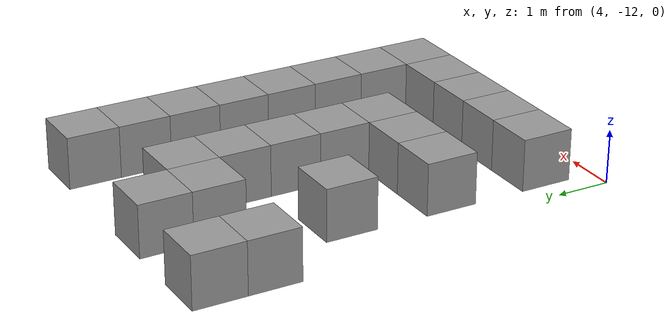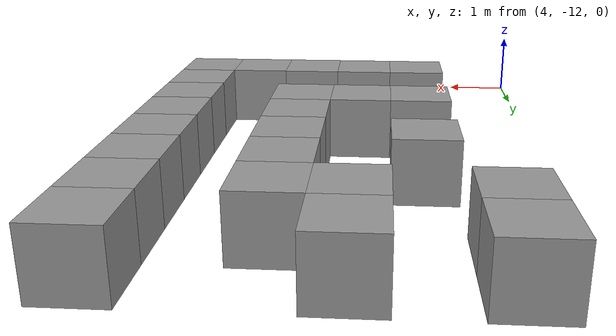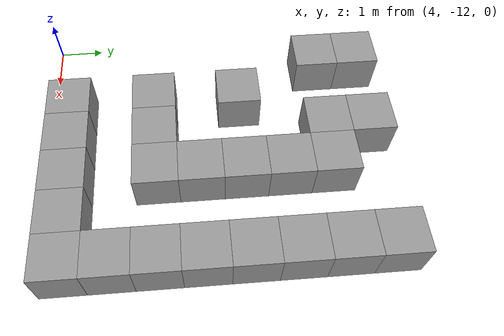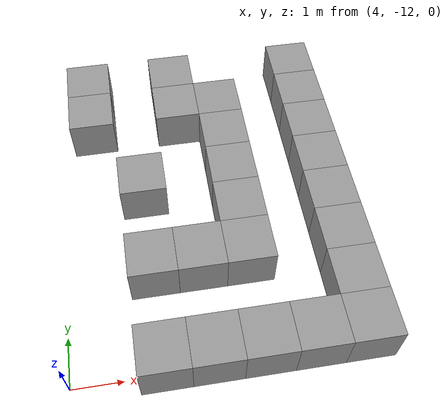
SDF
<sdf version="1.7">
 <model name="maze1">
  <link name="link_1_clone_150">
   <inertial>
    <mass>1</mass>
    <inertia>
     <ixx>0.166667</ixx>
     <ixy>0</ixy>
     <ixz>0</ixz>
     <iyy>0.166667</iyy>
     <iyz>0</iyz>
     <izz>0.166667</izz>
    </inertia>
   </inertial>
   <pose>6.75382 -4.62534 0 0 -0 0</pose>
   <visual name="visual">
    <geometry><box><size>1 1 1</size></box></geometry>
    <material>
     <lighting>1</lighting>
     <script><uri>file://media/materials/scripts/gazebo.material</uri><name>Gazebo/Grey</name></script>
     <shader type="pixel"><normal_map>__default__</normal_map></shader>
     <ambient>0.3 0.3 0.3 1</ambient>
     <diffuse>0.7 0.7 0.7 1</diffuse>
     <specular>0.01 0.01 0.01 1</specular>
     <emissive>0 0 0 1</emissive>
    </material>
   </visual>
   <collision name="collision">
    <geometry><box><size>1 1 1</size></box></geometry>
    <surface>
     <friction>
      <ode><mu>1</mu><mu2>1</mu2><fdir1>0 0 0</fdir1><slip1>0</slip1><slip2>0</slip2></ode>
      <torsional>
       <coefficient>1</coefficient>
       <patch_radius>0</patch_radius>
       <surface_radius>0</surface_radius>
       <use_patch_radius>1</use_patch_radius>
       <ode><slip>0</slip></ode>
      </torsional>
     </friction>
     <bounce><restitution_coefficient>0</restitution_coefficient><threshold>1e+06</threshold></bounce>
     <contact>
      <collide_without_contact>0</collide_without_contact>
      <collide_without_contact_bitmask>1</collide_without_contact_bitmask>
      <collide_bitmask>1</collide_bitmask>
      <ode>
       <soft_cfm>0</soft_cfm>
       <soft_erp>0.2</soft_erp>
       <kp>1e+13</kp>
       <kd>1</kd>
       <max_vel>0.01</max_vel>
       <min_depth>0</min_depth>
      </ode>
      <bullet>
       <split_impulse>1</split_impulse>
       <split_impulse_penetration_threshold>-0.01</split_impulse_penetration_threshold>
       <soft_cfm>0</soft_cfm>
       <soft_erp>0.2</soft_erp>
       <kp>1e+13</kp>
       <kd>1</kd>
      </bullet>
     </contact>
    </surface>
   </collision>
  </link>
  <link name="link_1_clone_151">
   <inertial>
    <mass>1</mass>
    <inertia>
     <ixx>0.166667</ixx>
     <ixy>0</ixy>
     <ixz>0</ixz>
     <iyy>0.166667</iyy>
     <iyz>0</iyz>
     <izz>0.166667</izz>
    </inertia>
   </inertial>
   <pose>6.75382 -5.62535 0 0 -0 0</pose>
   <visual name="visual">
    <geometry><box><size>1 1 1</size></box></geometry>
    <material>
     <lighting>1</lighting>
     <script><uri>file://media/materials/scripts/gazebo.material</uri><name>Gazebo/Grey</name></script>
     <shader type="pixel"><normal_map>__default__</normal_map></shader>
     <ambient>0.3 0.3 0.3 1</ambient>
     <diffuse>0.7 0.7 0.7 1</diffuse>
     <specular>0.01 0.01 0.01 1</specular>
     <emissive>0 0 0 1</emissive>
    </material>
   </visual>
   <collision name="collision">
    <geometry><box><size>1 1 1</size></box></geometry>
    <surface>
     <friction>
      <ode><mu>1</mu><mu2>1</mu2><fdir1>0 0 0</fdir1><slip1>0</slip1><slip2>0</slip2></ode>
      <torsional>
       <coefficient>1</coefficient>
       <patch_radius>0</patch_radius>
       <surface_radius>0</surface_radius>
       <use_patch_radius>1</use_patch_radius>
       <ode><slip>0</slip></ode>
      </torsional>
     </friction>
     <bounce><restitution_coefficient>0</restitution_coefficient><threshold>1e+06</threshold></bounce>
     <contact>
      <collide_without_contact>0</collide_without_contact>
      <collide_without_contact_bitmask>1</collide_without_contact_bitmask>
      <collide_bitmask>1</collide_bitmask>
      <ode>
       <soft_cfm>0</soft_cfm>
       <soft_erp>0.2</soft_erp>
       <kp>1e+13</kp>
       <kd>1</kd>
       <max_vel>0.01</max_vel>
       <min_depth>0</min_depth>
      </ode>
      <bullet>
       <split_impulse>1</split_impulse>
       <split_impulse_penetration_threshold>-0.01</split_impulse_penetration_threshold>
       <soft_cfm>0</soft_cfm>
       <soft_erp>0.2</soft_erp>
       <kp>1e+13</kp>
       <kd>1</kd>
      </bullet>
     </contact>
    </surface>
   </collision>
  </link>
  <link name="link_1_clone_152">
   <inertial>
    <mass>1</mass>
    <inertia>
     <ixx>0.166667</ixx>
     <ixy>0</ixy>
     <ixz>0</ixz>
     <iyy>0.166667</iyy>
     <iyz>0</iyz>
     <izz>0.166667</izz>
    </inertia>
   </inertial>
   <pose>7.75382 -5.62571 0 0 -0 0</pose>
   <visual name="visual">
    <geometry><box><size>1 1 1</size></box></geometry>
    <material>
     <lighting>1</lighting>
     <script><uri>file://media/materials/scripts/gazebo.material</uri><name>Gazebo/Grey</name></script>
     <shader type="pixel"><normal_map>__default__</normal_map></shader>
     <ambient>0.3 0.3 0.3 1</ambient>
     <diffuse>0.7 0.7 0.7 1</diffuse>
     <specular>0.01 0.01 0.01 1</specular>
     <emissive>0 0 0 1</emissive>
    </material>
   </visual>
   <collision name="collision">
    <geometry><box><size>1 1 1</size></box></geometry>
    <surface>
     <friction>
      <ode><mu>1</mu><mu2>1</mu2><fdir1>0 0 0</fdir1><slip1>0</slip1><slip2>0</slip2></ode>
      <torsional>
       <coefficient>1</coefficient>
       <patch_radius>0</patch_radius>
       <surface_radius>0</surface_radius>
       <use_patch_radius>1</use_patch_radius>
       <ode><slip>0</slip></ode>
      </torsional>
     </friction>
     <bounce><restitution_coefficient>0</restitution_coefficient><threshold>1e+06</threshold></bounce>
     <contact>
      <collide_without_contact>0</collide_without_contact>
      <collide_without_contact_bitmask>1</collide_without_contact_bitmask>
      <collide_bitmask>1</collide_bitmask>
      <ode>
       <soft_cfm>0</soft_cfm>
       <soft_erp>0.2</soft_erp>
       <kp>1e+13</kp>
       <kd>1</kd>
       <max_vel>0.01</max_vel>
       <min_depth>0</min_depth>
      </ode>
      <bullet>
       <split_impulse>1</split_impulse>
       <split_impulse_penetration_threshold>-0.01</split_impulse_penetration_threshold>
       <soft_cfm>0</soft_cfm>
       <soft_erp>0.2</soft_erp>
       <kp>1e+13</kp>
       <kd>1</kd>
      </bullet>
     </contact>
    </surface>
   </collision>
  </link>
  <link name="link_1_clone_153">
   <inertial>
    <mass>1</mass>
    <inertia>
     <ixx>0.166667</ixx>
     <ixy>0</ixy>
     <ixz>0</ixz>
     <iyy>0.166667</iyy>
     <iyz>0</iyz>
     <izz>0.166667</izz>
    </inertia>
   </inertial>
   <pose>7.75382 -6.62535 0 0 -0 0</pose>
   <visual name="visual">
    <geometry><box><size>1 1 1</size></box></geometry>
    <material>
     <lighting>1</lighting>
     <script><uri>file://media/materials/scripts/gazebo.material</uri><name>Gazebo/Grey</name></script>
     <shader type="pixel"><normal_map>__default__</normal_map></shader>
     <ambient>0.3 0.3 0.3 1</ambient>
     <diffuse>0.7 0.7 0.7 1</diffuse>
     <specular>0.01 0.01 0.01 1</specular>
     <emissive>0 0 0 1</emissive>
    </material>
   </visual>
   <collision name="collision">
    <geometry><box><size>1 1 1</size></box></geometry>
    <surface>
     <friction>
      <ode><mu>1</mu><mu2>1</mu2><fdir1>0 0 0</fdir1><slip1>0</slip1><slip2>0</slip2></ode>
      <torsional>
       <coefficient>1</coefficient>
       <patch_radius>0</patch_radius>
       <surface_radius>0</surface_radius>
       <use_patch_radius>1</use_patch_radius>
       <ode><slip>0</slip></ode>
      </torsional>
     </friction>
     <bounce><restitution_coefficient>0</restitution_coefficient><threshold>1e+06</threshold></bounce>
     <contact>
      <collide_without_contact>0</collide_without_contact>
      <collide_without_contact_bitmask>1</collide_without_contact_bitmask>
      <collide_bitmask>1</collide_bitmask>
      <ode>
       <soft_cfm>0</soft_cfm>
       <soft_erp>0.2</soft_erp>
       <kp>1e+13</kp>
       <kd>1</kd>
       <max_vel>0.01</max_vel>
       <min_depth>0</min_depth>
      </ode>
      <bullet>
       <split_impulse>1</split_impulse>
       <split_impulse_penetration_threshold>-0.01</split_impulse_penetration_threshold>
       <soft_cfm>0</soft_cfm>
       <soft_erp>0.2</soft_erp>
       <kp>1e+13</kp>
       <kd>1</kd>
      </bullet>
     </contact>
    </surface>
   </collision>
  </link>
  <link name="link_1_clone_154">
   <inertial>
    <mass>1</mass>
    <inertia>
     <ixx>0.166667</ixx>
     <ixy>0</ixy>
     <ixz>0</ixz>
     <iyy>0.166667</iyy>
     <iyz>0</iyz>
     <izz>0.166667</izz>
    </inertia>
   </inertial>
   <pose>7.75382 -7.62535 0 0 -0 0</pose>
   <visual name="visual">
    <geometry><box><size>1 1 1</size></box></geometry>
    <material>
     <lighting>1</lighting>
     <script><uri>file://media/materials/scripts/gazebo.material</uri><name>Gazebo/Grey</name></script>
     <shader type="pixel"><normal_map>__default__</normal_map></shader>
     <ambient>0.3 0.3 0.3 1</ambient>
     <diffuse>0.7 0.7 0.7 1</diffuse>
     <specular>0.01 0.01 0.01 1</specular>
     <emissive>0 0 0 1</emissive>
    </material>
   </visual>
   <collision name="collision">
    <geometry><box><size>1 1 1</size></box></geometry>
    <surface>
     <friction>
      <ode><mu>1</mu><mu2>1</mu2><fdir1>0 0 0</fdir1><slip1>0</slip1><slip2>0</slip2></ode>
      <torsional>
       <coefficient>1</coefficient>
       <patch_radius>0</patch_radius>
       <surface_radius>0</surface_radius>
       <use_patch_radius>1</use_patch_radius>
       <ode><slip>0</slip></ode>
      </torsional>
     </friction>
     <bounce><restitution_coefficient>0</restitution_coefficient><threshold>1e+06</threshold></bounce>
     <contact>
      <collide_without_contact>0</collide_without_contact>
      <collide_without_contact_bitmask>1</collide_without_contact_bitmask>
      <collide_bitmask>1</collide_bitmask>
      <ode>
       <soft_cfm>0</soft_cfm>
       <soft_erp>0.2</soft_erp>
       <kp>1e+13</kp>
       <kd>1</kd>
       <max_vel>0.01</max_vel>
       <min_depth>0</min_depth>
      </ode>
      <bullet>
       <split_impulse>1</split_impulse>
       <split_impulse_penetration_threshold>-0.01</split_impulse_penetration_threshold>
       <soft_cfm>0</soft_cfm>
       <soft_erp>0.2</soft_erp>
       <kp>1e+13</kp>
       <kd>1</kd>
      </bullet>
     </contact>
    </surface>
   </collision>
  </link>
  <link name="link_1_clone_155">
   <inertial>
    <mass>1</mass>
    <inertia>
     <ixx>0.166667</ixx>
     <ixy>0</ixy>
     <ixz>0</ixz>
     <iyy>0.166667</iyy>
     <iyz>0</iyz>
     <izz>0.166667</izz>
    </inertia>
   </inertial>
   <pose>7.75382 -8.62535 0 0 -0 0</pose>
   <visual name="visual">
    <geometry><box><size>1 1 1</size></box></geometry>
    <material>
     <lighting>1</lighting>
     <script><uri>file://media/materials/scripts/gazebo.material</uri><name>Gazebo/Grey</name></script>
     <shader type="pixel"><normal_map>__default__</normal_map></shader>
     <ambient>0.3 0.3 0.3 1</ambient>
     <diffuse>0.7 0.7 0.7 1</diffuse>
     <specular>0.01 0.01 0.01 1</specular>
     <emissive>0 0 0 1</emissive>
    </material>
   </visual>
   <collision name="collision">
    <geometry><box><size>1 1 1</size></box></geometry>
    <surface>
     <friction>
      <ode><mu>1</mu><mu2>1</mu2><fdir1>0 0 0</fdir1><slip1>0</slip1><slip2>0</slip2></ode>
      <torsional>
       <coefficient>1</coefficient>
       <patch_radius>0</patch_radius>
       <surface_radius>0</surface_radius>
       <use_patch_radius>1</use_patch_radius>
       <ode><slip>0</slip></ode>
      </torsional>
     </friction>
     <bounce><restitution_coefficient>0</restitution_coefficient><threshold>1e+06</threshold></bounce>
     <contact>
      <collide_without_contact>0</collide_without_contact>
      <collide_without_contact_bitmask>1</collide_without_contact_bitmask>
      <collide_bitmask>1</collide_bitmask>
      <ode>
       <soft_cfm>0</soft_cfm>
       <soft_erp>0.2</soft_erp>
       <kp>1e+13</kp>
       <kd>1</kd>
       <max_vel>0.01</max_vel>
       <min_depth>0</min_depth>
      </ode>
      <bullet>
       <split_impulse>1</split_impulse>
       <split_impulse_penetration_threshold>-0.01</split_impulse_penetration_threshold>
       <soft_cfm>0</soft_cfm>
       <soft_erp>0.2</soft_erp>
       <kp>1e+13</kp>
       <kd>1</kd>
      </bullet>
     </contact>
    </surface>
   </collision>
  </link>
  <link name="link_1_clone_156">
   <inertial>
    <mass>1</mass>
    <inertia>
     <ixx>0.166667</ixx>
     <ixy>0</ixy>
     <ixz>0</ixz>
     <iyy>0.166667</iyy>
     <iyz>0</iyz>
     <izz>0.166667</izz>
    </inertia>
   </inertial>
   <pose>7.75382 -9.62535 0 0 -0 0</pose>
   <visual name="visual">
    <geometry><box><size>1 1 1</size></box></geometry>
    <material>
     <lighting>1</lighting>
     <script><uri>file://media/materials/scripts/gazebo.material</uri><name>Gazebo/Grey</name></script>
     <shader type="pixel"><normal_map>__default__</normal_map></shader>
     <ambient>0.3 0.3 0.3 1</ambient>
     <diffuse>0.7 0.7 0.7 1</diffuse>
     <specular>0.01 0.01 0.01 1</specular>
     <emissive>0 0 0 1</emissive>
    </material>
   </visual>
   <collision name="collision">
    <geometry><box><size>1 1 1</size></box></geometry>
    <surface>
     <friction>
      <ode><mu>1</mu><mu2>1</mu2><fdir1>0 0 0</fdir1><slip1>0</slip1><slip2>0</slip2></ode>
      <torsional>
       <coefficient>1</coefficient>
       <patch_radius>0</patch_radius>
       <surface_radius>0</surface_radius>
       <use_patch_radius>1</use_patch_radius>
       <ode><slip>0</slip></ode>
      </torsional>
     </friction>
     <bounce><restitution_coefficient>0</restitution_coefficient><threshold>1e+06</threshold></bounce>
     <contact>
      <collide_without_contact>0</collide_without_contact>
      <collide_without_contact_bitmask>1</collide_without_contact_bitmask>
      <collide_bitmask>1</collide_bitmask>
      <ode>
       <soft_cfm>0</soft_cfm>
       <soft_erp>0.2</soft_erp>
       <kp>1e+13</kp>
       <kd>1</kd>
       <max_vel>0.01</max_vel>
       <min_depth>0</min_depth>
      </ode>
      <bullet>
       <split_impulse>1</split_impulse>
       <split_impulse_penetration_threshold>-0.01</split_impulse_penetration_threshold>
       <soft_cfm>0</soft_cfm>
       <soft_erp>0.2</soft_erp>
       <kp>1e+13</kp>
       <kd>1</kd>
      </bullet>
     </contact>
    </surface>
   </collision>
  </link>
  <link name="link_1_clone_157">
   <inertial>
    <mass>1</mass>
    <inertia>
     <ixx>0.166667</ixx>
     <ixy>0</ixy>
     <ixz>0</ixz>
     <iyy>0.166667</iyy>
     <iyz>0</iyz>
     <izz>0.166667</izz>
    </inertia>
   </inertial>
   <pose>6.75382 -9.62535 0 0 -0 0</pose>
   <visual name="visual">
    <geometry><box><size>1 1 1</size></box></geometry>
    <material>
     <lighting>1</lighting>
     <script><uri>file://media/materials/scripts/gazebo.material</uri><name>Gazebo/Grey</name></script>
     <shader type="pixel"><normal_map>__default__</normal_map></shader>
     <ambient>0.3 0.3 0.3 1</ambient>
     <diffuse>0.7 0.7 0.7 1</diffuse>
     <specular>0.01 0.01 0.01 1</specular>
     <emissive>0 0 0 1</emissive>
    </material>
   </visual>
   <collision name="collision">
    <geometry><box><size>1 1 1</size></box></geometry>
    <surface>
     <friction>
      <ode><mu>1</mu><mu2>1</mu2><fdir1>0 0 0</fdir1><slip1>0</slip1><slip2>0</slip2></ode>
      <torsional>
       <coefficient>1</coefficient>
       <patch_radius>0</patch_radius>
       <surface_radius>0</surface_radius>
       <use_patch_radius>1</use_patch_radius>
       <ode><slip>0</slip></ode>
      </torsional>
     </friction>
     <bounce><restitution_coefficient>0</restitution_coefficient><threshold>1e+06</threshold></bounce>
     <contact>
      <collide_without_contact>0</collide_without_contact>
      <collide_without_contact_bitmask>1</collide_without_contact_bitmask>
      <collide_bitmask>1</collide_bitmask>
      <ode>
       <soft_cfm>0</soft_cfm>
       <soft_erp>0.2</soft_erp>
       <kp>1e+13</kp>
       <kd>1</kd>
       <max_vel>0.01</max_vel>
       <min_depth>0</min_depth>
      </ode>
      <bullet>
       <split_impulse>1</split_impulse>
       <split_impulse_penetration_threshold>-0.01</split_impulse_penetration_threshold>
       <soft_cfm>0</soft_cfm>
       <soft_erp>0.2</soft_erp>
       <kp>1e+13</kp>
       <kd>1</kd>
      </bullet>
     </contact>
    </surface>
   </collision>
  </link>
  <link name="link_1_clone_158">
   <inertial>
    <mass>1</mass>
    <inertia>
     <ixx>0.166667</ixx>
     <ixy>0</ixy>
     <ixz>0</ixz>
     <iyy>0.166667</iyy>
     <iyz>0</iyz>
     <izz>0.166667</izz>
    </inertia>
   </inertial>
   <pose>5.75382 -9.62535 0 0 -0 0</pose>
   <visual name="visual">
    <geometry><box><size>1 1 1</size></box></geometry>
    <material>
     <lighting>1</lighting>
     <script><uri>file://media/materials/scripts/gazebo.material</uri><name>Gazebo/Grey</name></script>
     <shader type="pixel"><normal_map>__default__</normal_map></shader>
     <ambient>0.3 0.3 0.3 1</ambient>
     <diffuse>0.7 0.7 0.7 1</diffuse>
     <specular>0.01 0.01 0.01 1</specular>
     <emissive>0 0 0 1</emissive>
    </material>
   </visual>
   <collision name="collision">
    <geometry><box><size>1 1 1</size></box></geometry>
    <surface>
     <friction>
      <ode><mu>1</mu><mu2>1</mu2><fdir1>0 0 0</fdir1><slip1>0</slip1><slip2>0</slip2></ode>
      <torsional>
       <coefficient>1</coefficient>
       <patch_radius>0</patch_radius>
       <surface_radius>0</surface_radius>
       <use_patch_radius>1</use_patch_radius>
       <ode><slip>0</slip></ode>
      </torsional>
     </friction>
     <bounce><restitution_coefficient>0</restitution_coefficient><threshold>1e+06</threshold></bounce>
     <contact>
      <collide_without_contact>0</collide_without_contact>
      <collide_without_contact_bitmask>1</collide_without_contact_bitmask>
      <collide_bitmask>1</collide_bitmask>
      <ode>
       <soft_cfm>0</soft_cfm>
       <soft_erp>0.2</soft_erp>
       <kp>1e+13</kp>
       <kd>1</kd>
       <max_vel>0.01</max_vel>
       <min_depth>0</min_depth>
      </ode>
      <bullet>
       <split_impulse>1</split_impulse>
       <split_impulse_penetration_threshold>-0.01</split_impulse_penetration_threshold>
       <soft_cfm>0</soft_cfm>
       <soft_erp>0.2</soft_erp>
       <kp>1e+13</kp>
       <kd>1</kd>
      </bullet>
     </contact>
    </surface>
   </collision>
  </link>
  <link name="link_1_clone_160">
   <inertial>
    <mass>1</mass>
    <inertia>
     <ixx>0.166667</ixx>
     <ixy>0</ixy>
     <ixz>0</ixz>
     <iyy>0.166667</iyy>
     <iyz>0</iyz>
     <izz>0.166667</izz>
    </inertia>
   </inertial>
   <pose>5.75382 -7.62535 0 0 -0 0</pose>
   <visual name="visual">
    <geometry><box><size>1 1 1</size></box></geometry>
    <material>
     <lighting>1</lighting>
     <script><uri>file://media/materials/scripts/gazebo.material</uri><name>Gazebo/Grey</name></script>
     <shader type="pixel"><normal_map>__default__</normal_map></shader>
     <ambient>0.3 0.3 0.3 1</ambient>
     <diffuse>0.7 0.7 0.7 1</diffuse>
     <specular>0.01 0.01 0.01 1</specular>
     <emissive>0 0 0 1</emissive>
    </material>
   </visual>
   <collision name="collision">
    <geometry><box><size>1 1 1</size></box></geometry>
    <surface>
     <friction>
      <ode><mu>1</mu><mu2>1</mu2><fdir1>0 0 0</fdir1><slip1>0</slip1><slip2>0</slip2></ode>
      <torsional>
       <coefficient>1</coefficient>
       <patch_radius>0</patch_radius>
       <surface_radius>0</surface_radius>
       <use_patch_radius>1</use_patch_radius>
       <ode><slip>0</slip></ode>
      </torsional>
     </friction>
     <bounce><restitution_coefficient>0</restitution_coefficient><threshold>1e+06</threshold></bounce>
     <contact>
      <collide_without_contact>0</collide_without_contact>
      <collide_without_contact_bitmask>1</collide_without_contact_bitmask>
      <collide_bitmask>1</collide_bitmask>
      <ode>
       <soft_cfm>0</soft_cfm>
       <soft_erp>0.2</soft_erp>
       <kp>1e+13</kp>
       <kd>1</kd>
       <max_vel>0.01</max_vel>
       <min_depth>0</min_depth>
      </ode>
      <bullet>
       <split_impulse>1</split_impulse>
       <split_impulse_penetration_threshold>-0.01</split_impulse_penetration_threshold>
       <soft_cfm>0</soft_cfm>
       <soft_erp>0.2</soft_erp>
       <kp>1e+13</kp>
       <kd>1</kd>
      </bullet>
     </contact>
    </surface>
   </collision>
  </link>
  <link name="link_1_clone_163">
   <inertial>
    <mass>1</mass>
    <inertia>
     <ixx>0.166667</ixx>
     <ixy>0</ixy>
     <ixz>0</ixz>
     <iyy>0.166667</iyy>
     <iyz>0</iyz>
     <izz>0.166667</izz>
    </inertia>
   </inertial>
   <pose>4.75382 -5.62535 0 0 -0 0</pose>
   <visual name="visual">
    <geometry><box><size>1 1 1</size></box></geometry>
    <material>
     <lighting>1</lighting>
     <script><uri>file://media/materials/scripts/gazebo.material</uri><name>Gazebo/Grey</name></script>
     <shader type="pixel"><normal_map>__default__</normal_map></shader>
     <ambient>0.3 0.3 0.3 1</ambient>
     <diffuse>0.7 0.7 0.7 1</diffuse>
     <specular>0.01 0.01 0.01 1</specular>
     <emissive>0 0 0 1</emissive>
    </material>
   </visual>
   <collision name="collision">
    <geometry><box><size>1 1 1</size></box></geometry>
    <surface>
     <friction>
      <ode><mu>1</mu><mu2>1</mu2><fdir1>0 0 0</fdir1><slip1>0</slip1><slip2>0</slip2></ode>
      <torsional>
       <coefficient>1</coefficient>
       <patch_radius>0</patch_radius>
       <surface_radius>0</surface_radius>
       <use_patch_radius>1</use_patch_radius>
       <ode><slip>0</slip></ode>
      </torsional>
     </friction>
     <bounce><restitution_coefficient>0</restitution_coefficient><threshold>1e+06</threshold></bounce>
     <contact>
      <collide_without_contact>0</collide_without_contact>
      <collide_without_contact_bitmask>1</collide_without_contact_bitmask>
      <collide_bitmask>1</collide_bitmask>
      <ode>
       <soft_cfm>0</soft_cfm>
       <soft_erp>0.2</soft_erp>
       <kp>1e+13</kp>
       <kd>1</kd>
       <max_vel>0.01</max_vel>
       <min_depth>0</min_depth>
      </ode>
      <bullet>
       <split_impulse>1</split_impulse>
       <split_impulse_penetration_threshold>-0.01</split_impulse_penetration_threshold>
       <soft_cfm>0</soft_cfm>
       <soft_erp>0.2</soft_erp>
       <kp>1e+13</kp>
       <kd>1</kd>
      </bullet>
     </contact>
    </surface>
   </collision>
  </link>
  <link name="link_1_clone_164">
   <inertial>
    <mass>1</mass>
    <inertia>
     <ixx>0.166667</ixx>
     <ixy>0</ixy>
     <ixz>0</ixz>
     <iyy>0.166667</iyy>
     <iyz>0</iyz>
     <izz>0.166667</izz>
    </inertia>
   </inertial>
   <pose>4.75382 -4.62534 0 0 -0 0</pose>
   <visual name="visual">
    <geometry><box><size>1 1 1</size></box></geometry>
    <material>
     <lighting>1</lighting>
     <script><uri>file://media/materials/scripts/gazebo.material</uri><name>Gazebo/Grey</name></script>
     <shader type="pixel"><normal_map>__default__</normal_map></shader>
     <ambient>0.3 0.3 0.3 1</ambient>
     <diffuse>0.7 0.7 0.7 1</diffuse>
     <specular>0.01 0.01 0.01 1</specular>
     <emissive>0 0 0 1</emissive>
    </material>
   </visual>
   <collision name="collision">
    <geometry><box><size>1 1 1</size></box></geometry>
    <surface>
     <friction>
      <ode><mu>1</mu><mu2>1</mu2><fdir1>0 0 0</fdir1><slip1>0</slip1><slip2>0</slip2></ode>
      <torsional>
       <coefficient>1</coefficient>
       <patch_radius>0</patch_radius>
       <surface_radius>0</surface_radius>
       <use_patch_radius>1</use_patch_radius>
       <ode><slip>0</slip></ode>
      </torsional>
     </friction>
     <bounce><restitution_coefficient>0</restitution_coefficient><threshold>1e+06</threshold></bounce>
     <contact>
      <collide_without_contact>0</collide_without_contact>
      <collide_without_contact_bitmask>1</collide_without_contact_bitmask>
      <collide_bitmask>1</collide_bitmask>
      <ode>
       <soft_cfm>0</soft_cfm>
       <soft_erp>0.2</soft_erp>
       <kp>1e+13</kp>
       <kd>1</kd>
       <max_vel>0.01</max_vel>
       <min_depth>0</min_depth>
      </ode>
      <bullet>
       <split_impulse>1</split_impulse>
       <split_impulse_penetration_threshold>-0.01</split_impulse_penetration_threshold>
       <soft_cfm>0</soft_cfm>
       <soft_erp>0.2</soft_erp>
       <kp>1e+13</kp>
       <kd>1</kd>
      </bullet>
     </contact>
    </surface>
   </collision>
  </link>
  <link name="link_1_clone_50">
   <inertial>
    <mass>1</mass>
    <inertia>
     <ixx>0.166667</ixx>
     <ixy>0</ixy>
     <ixz>0</ixz>
     <iyy>0.166667</iyy>
     <iyz>0</iyz>
     <izz>0.166667</izz>
    </inertia>
   </inertial>
   <pose>5.75382 -11.6253 0 0 -0 0</pose>
   <visual name="visual">
    <geometry><box><size>1 1 1</size></box></geometry>
    <material>
     <lighting>1</lighting>
     <script><uri>file://media/materials/scripts/gazebo.material</uri><name>Gazebo/Grey</name></script>
     <shader type="pixel"><normal_map>__default__</normal_map></shader>
     <ambient>0.3 0.3 0.3 1</ambient>
     <diffuse>0.7 0.7 0.7 1</diffuse>
     <specular>0.01 0.01 0.01 1</specular>
     <emissive>0 0 0 1</emissive>
    </material>
   </visual>
   <collision name="collision">
    <geometry><box><size>1 1 1</size></box></geometry>
    <surface>
     <friction>
      <ode><mu>1</mu><mu2>1</mu2><fdir1>0 0 0</fdir1><slip1>0</slip1><slip2>0</slip2></ode>
      <torsional>
       <coefficient>1</coefficient>
       <patch_radius>0</patch_radius>
       <surface_radius>0</surface_radius>
       <use_patch_radius>1</use_patch_radius>
       <ode><slip>0</slip></ode>
      </torsional>
     </friction>
     <bounce><restitution_coefficient>0</restitution_coefficient><threshold>1e+06</threshold></bounce>
     <contact>
      <collide_without_contact>0</collide_without_contact>
      <collide_without_contact_bitmask>1</collide_without_contact_bitmask>
      <collide_bitmask>1</collide_bitmask>
      <ode>
       <soft_cfm>0</soft_cfm>
       <soft_erp>0.2</soft_erp>
       <kp>1e+13</kp>
       <kd>1</kd>
       <max_vel>0.01</max_vel>
       <min_depth>0</min_depth>
      </ode>
      <bullet>
       <split_impulse>1</split_impulse>
       <split_impulse_penetration_threshold>-0.01</split_impulse_penetration_threshold>
       <soft_cfm>0</soft_cfm>
       <soft_erp>0.2</soft_erp>
       <kp>1e+13</kp>
       <kd>1</kd>
      </bullet>
     </contact>
    </surface>
   </collision>
  </link>
  <link name="link_1_clone_51">
   <inertial>
    <mass>1</mass>
    <inertia>
     <ixx>0.166667</ixx>
     <ixy>0</ixy>
     <ixz>0</ixz>
     <iyy>0.166667</iyy>
     <iyz>0</iyz>
     <izz>0.166667</izz>
    </inertia>
   </inertial>
   <pose>6.75382 -11.6253 0 0 -0 0</pose>
   <visual name="visual">
    <geometry><box><size>1 1 1</size></box></geometry>
    <material>
     <lighting>1</lighting>
     <script><uri>file://media/materials/scripts/gazebo.material</uri><name>Gazebo/Grey</name></script>
     <shader type="pixel"><normal_map>__default__</normal_map></shader>
     <ambient>0.3 0.3 0.3 1</ambient>
     <diffuse>0.7 0.7 0.7 1</diffuse>
     <specular>0.01 0.01 0.01 1</specular>
     <emissive>0 0 0 1</emissive>
    </material>
   </visual>
   <collision name="collision">
    <geometry><box><size>1 1 1</size></box></geometry>
    <surface>
     <friction>
      <ode><mu>1</mu><mu2>1</mu2><fdir1>0 0 0</fdir1><slip1>0</slip1><slip2>0</slip2></ode>
      <torsional>
       <coefficient>1</coefficient>
       <patch_radius>0</patch_radius>
       <surface_radius>0</surface_radius>
       <use_patch_radius>1</use_patch_radius>
       <ode><slip>0</slip></ode>
      </torsional>
     </friction>
     <bounce><restitution_coefficient>0</restitution_coefficient><threshold>1e+06</threshold></bounce>
     <contact>
      <collide_without_contact>0</collide_without_contact>
      <collide_without_contact_bitmask>1</collide_without_contact_bitmask>
      <collide_bitmask>1</collide_bitmask>
      <ode>
       <soft_cfm>0</soft_cfm>
       <soft_erp>0.2</soft_erp>
       <kp>1e+13</kp>
       <kd>1</kd>
       <max_vel>0.01</max_vel>
       <min_depth>0</min_depth>
      </ode>
      <bullet>
       <split_impulse>1</split_impulse>
       <split_impulse_penetration_threshold>-0.01</split_impulse_penetration_threshold>
       <soft_cfm>0</soft_cfm>
       <soft_erp>0.2</soft_erp>
       <kp>1e+13</kp>
       <kd>1</kd>
      </bullet>
     </contact>
    </surface>
   </collision>
  </link>
  <link name="link_1_clone_52">
   <inertial>
    <mass>1</mass>
    <inertia>
     <ixx>0.166667</ixx>
     <ixy>0</ixy>
     <ixz>0</ixz>
     <iyy>0.166667</iyy>
     <iyz>0</iyz>
     <izz>0.166667</izz>
    </inertia>
   </inertial>
   <pose>7.75382 -11.6253 0 0 -0 0</pose>
   <visual name="visual">
    <geometry><box><size>1 1 1</size></box></geometry>
    <material>
     <lighting>1</lighting>
     <script><uri>file://media/materials/scripts/gazebo.material</uri><name>Gazebo/Grey</name></script>
     <shader type="pixel"><normal_map>__default__</normal_map></shader>
     <ambient>0.3 0.3 0.3 1</ambient>
     <diffuse>0.7 0.7 0.7 1</diffuse>
     <specular>0.01 0.01 0.01 1</specular>
     <emissive>0 0 0 1</emissive>
    </material>
   </visual>
   <collision name="collision">
    <geometry><box><size>1 1 1</size></box></geometry>
    <surface>
     <friction>
      <ode><mu>1</mu><mu2>1</mu2><fdir1>0 0 0</fdir1><slip1>0</slip1><slip2>0</slip2></ode>
      <torsional>
       <coefficient>1</coefficient>
       <patch_radius>0</patch_radius>
       <surface_radius>0</surface_radius>
       <use_patch_radius>1</use_patch_radius>
       <ode><slip>0</slip></ode>
      </torsional>
     </friction>
     <bounce><restitution_coefficient>0</restitution_coefficient><threshold>1e+06</threshold></bounce>
     <contact>
      <collide_without_contact>0</collide_without_contact>
      <collide_without_contact_bitmask>1</collide_without_contact_bitmask>
      <collide_bitmask>1</collide_bitmask>
      <ode>
       <soft_cfm>0</soft_cfm>
       <soft_erp>0.2</soft_erp>
       <kp>1e+13</kp>
       <kd>1</kd>
       <max_vel>0.01</max_vel>
       <min_depth>0</min_depth>
      </ode>
      <bullet>
       <split_impulse>1</split_impulse>
       <split_impulse_penetration_threshold>-0.01</split_impulse_penetration_threshold>
       <soft_cfm>0</soft_cfm>
       <soft_erp>0.2</soft_erp>
       <kp>1e+13</kp>
       <kd>1</kd>
      </bullet>
     </contact>
    </surface>
   </collision>
  </link>
  <link name="link_1_clone_53">
   <inertial>
    <mass>1</mass>
    <inertia>
     <ixx>0.166667</ixx>
     <ixy>0</ixy>
     <ixz>0</ixz>
     <iyy>0.166667</iyy>
     <iyz>0</iyz>
     <izz>0.166667</izz>
    </inertia>
   </inertial>
   <pose>8.75382 -11.6253 0 0 -0 0</pose>
   <visual name="visual">
    <geometry><box><size>1 1 1</size></box></geometry>
    <material>
     <lighting>1</lighting>
     <script><uri>file://media/materials/scripts/gazebo.material</uri><name>Gazebo/Grey</name></script>
     <shader type="pixel"><normal_map>__default__</normal_map></shader>
     <ambient>0.3 0.3 0.3 1</ambient>
     <diffuse>0.7 0.7 0.7 1</diffuse>
     <specular>0.01 0.01 0.01 1</specular>
     <emissive>0 0 0 1</emissive>
    </material>
   </visual>
   <collision name="collision">
    <geometry><box><size>1 1 1</size></box></geometry>
    <surface>
     <friction>
      <ode><mu>1</mu><mu2>1</mu2><fdir1>0 0 0</fdir1><slip1>0</slip1><slip2>0</slip2></ode>
      <torsional>
       <coefficient>1</coefficient>
       <patch_radius>0</patch_radius>
       <surface_radius>0</surface_radius>
       <use_patch_radius>1</use_patch_radius>
       <ode><slip>0</slip></ode>
      </torsional>
     </friction>
     <bounce><restitution_coefficient>0</restitution_coefficient><threshold>1e+06</threshold></bounce>
     <contact>
      <collide_without_contact>0</collide_without_contact>
      <collide_without_contact_bitmask>1</collide_without_contact_bitmask>
      <collide_bitmask>1</collide_bitmask>
      <ode>
       <soft_cfm>0</soft_cfm>
       <soft_erp>0.2</soft_erp>
       <kp>1e+13</kp>
       <kd>1</kd>
       <max_vel>0.01</max_vel>
       <min_depth>0</min_depth>
      </ode>
      <bullet>
       <split_impulse>1</split_impulse>
       <split_impulse_penetration_threshold>-0.01</split_impulse_penetration_threshold>
       <soft_cfm>0</soft_cfm>
       <soft_erp>0.2</soft_erp>
       <kp>1e+13</kp>
       <kd>1</kd>
      </bullet>
     </contact>
    </surface>
   </collision>
  </link>
  <link name="link_1_clone_54">
   <inertial>
    <mass>1</mass>
    <inertia>
     <ixx>0.166667</ixx>
     <ixy>0</ixy>
     <ixz>0</ixz>
     <iyy>0.166667</iyy>
     <iyz>0</iyz>
     <izz>0.166667</izz>
    </inertia>
   </inertial>
   <pose>9.75382 -11.6253 0 0 -0 0</pose>
   <visual name="visual">
    <geometry><box><size>1 1 1</size></box></geometry>
    <material>
     <lighting>1</lighting>
     <script><uri>file://media/materials/scripts/gazebo.material</uri><name>Gazebo/Grey</name></script>
     <shader type="pixel"><normal_map>__default__</normal_map></shader>
     <ambient>0.3 0.3 0.3 1</ambient>
     <diffuse>0.7 0.7 0.7 1</diffuse>
     <specular>0.01 0.01 0.01 1</specular>
     <emissive>0 0 0 1</emissive>
    </material>
   </visual>
   <collision name="collision">
    <geometry><box><size>1 1 1</size></box></geometry>
    <surface>
     <friction>
      <ode><mu>1</mu><mu2>1</mu2><fdir1>0 0 0</fdir1><slip1>0</slip1><slip2>0</slip2></ode>
      <torsional>
       <coefficient>1</coefficient>
       <patch_radius>0</patch_radius>
       <surface_radius>0</surface_radius>
       <use_patch_radius>1</use_patch_radius>
       <ode><slip>0</slip></ode>
      </torsional>
     </friction>
     <bounce><restitution_coefficient>0</restitution_coefficient><threshold>1e+06</threshold></bounce>
     <contact>
      <collide_without_contact>0</collide_without_contact>
      <collide_without_contact_bitmask>1</collide_without_contact_bitmask>
      <collide_bitmask>1</collide_bitmask>
      <ode>
       <soft_cfm>0</soft_cfm>
       <soft_erp>0.2</soft_erp>
       <kp>1e+13</kp>
       <kd>1</kd>
       <max_vel>0.01</max_vel>
       <min_depth>0</min_depth>
      </ode>
      <bullet>
       <split_impulse>1</split_impulse>
       <split_impulse_penetration_threshold>-0.01</split_impulse_penetration_threshold>
       <soft_cfm>0</soft_cfm>
       <soft_erp>0.2</soft_erp>
       <kp>1e+13</kp>
       <kd>1</kd>
      </bullet>
     </contact>
    </surface>
   </collision>
  </link>
  <link name="link_1_clone_55">
   <inertial>
    <mass>1</mass>
    <inertia>
     <ixx>0.166667</ixx>
     <ixy>0</ixy>
     <ixz>0</ixz>
     <iyy>0.166667</iyy>
     <iyz>0</iyz>
     <izz>0.166667</izz>
    </inertia>
   </inertial>
   <pose>9.75382 -10.6253 0 0 -0 0</pose>
   <visual name="visual">
    <geometry><box><size>1 1 1</size></box></geometry>
    <material>
     <lighting>1</lighting>
     <script><uri>file://media/materials/scripts/gazebo.material</uri><name>Gazebo/Grey</name></script>
     <shader type="pixel"><normal_map>__default__</normal_map></shader>
     <ambient>0.3 0.3 0.3 1</ambient>
     <diffuse>0.7 0.7 0.7 1</diffuse>
     <specular>0.01 0.01 0.01 1</specular>
     <emissive>0 0 0 1</emissive>
    </material>
   </visual>
   <collision name="collision">
    <geometry><box><size>1 1 1</size></box></geometry>
    <surface>
     <friction>
      <ode><mu>1</mu><mu2>1</mu2><fdir1>0 0 0</fdir1><slip1>0</slip1><slip2>0</slip2></ode>
      <torsional>
       <coefficient>1</coefficient>
       <patch_radius>0</patch_radius>
       <surface_radius>0</surface_radius>
       <use_patch_radius>1</use_patch_radius>
       <ode><slip>0</slip></ode>
      </torsional>
     </friction>
     <bounce><restitution_coefficient>0</restitution_coefficient><threshold>1e+06</threshold></bounce>
     <contact>
      <collide_without_contact>0</collide_without_contact>
      <collide_without_contact_bitmask>1</collide_without_contact_bitmask>
      <collide_bitmask>1</collide_bitmask>
      <ode>
       <soft_cfm>0</soft_cfm>
       <soft_erp>0.2</soft_erp>
       <kp>1e+13</kp>
       <kd>1</kd>
       <max_vel>0.01</max_vel>
       <min_depth>0</min_depth>
      </ode>
      <bullet>
       <split_impulse>1</split_impulse>
       <split_impulse_penetration_threshold>-0.01</split_impulse_penetration_threshold>
       <soft_cfm>0</soft_cfm>
       <soft_erp>0.2</soft_erp>
       <kp>1e+13</kp>
       <kd>1</kd>
      </bullet>
     </contact>
    </surface>
   </collision>
  </link>
  <link name="link_1_clone_56">
   <inertial>
    <mass>1</mass>
    <inertia>
     <ixx>0.166667</ixx>
     <ixy>0</ixy>
     <ixz>0</ixz>
     <iyy>0.166667</iyy>
     <iyz>0</iyz>
     <izz>0.166667</izz>
    </inertia>
   </inertial>
   <pose>9.75382 -9.62535 0 0 -0 0</pose>
   <visual name="visual">
    <geometry><box><size>1 1 1</size></box></geometry>
    <material>
     <lighting>1</lighting>
     <script><uri>file://media/materials/scripts/gazebo.material</uri><name>Gazebo/Grey</name></script>
     <shader type="pixel"><normal_map>__default__</normal_map></shader>
     <ambient>0.3 0.3 0.3 1</ambient>
     <diffuse>0.7 0.7 0.7 1</diffuse>
     <specular>0.01 0.01 0.01 1</specular>
     <emissive>0 0 0 1</emissive>
    </material>
   </visual>
   <collision name="collision">
    <geometry><box><size>1 1 1</size></box></geometry>
    <surface>
     <friction>
      <ode><mu>1</mu><mu2>1</mu2><fdir1>0 0 0</fdir1><slip1>0</slip1><slip2>0</slip2></ode>
      <torsional>
       <coefficient>1</coefficient>
       <patch_radius>0</patch_radius>
       <surface_radius>0</surface_radius>
       <use_patch_radius>1</use_patch_radius>
       <ode><slip>0</slip></ode>
      </torsional>
     </friction>
     <bounce><restitution_coefficient>0</restitution_coefficient><threshold>1e+06</threshold></bounce>
     <contact>
      <collide_without_contact>0</collide_without_contact>
      <collide_without_contact_bitmask>1</collide_without_contact_bitmask>
      <collide_bitmask>1</collide_bitmask>
      <ode>
       <soft_cfm>0</soft_cfm>
       <soft_erp>0.2</soft_erp>
       <kp>1e+13</kp>
       <kd>1</kd>
       <max_vel>0.01</max_vel>
       <min_depth>0</min_depth>
      </ode>
      <bullet>
       <split_impulse>1</split_impulse>
       <split_impulse_penetration_threshold>-0.01</split_impulse_penetration_threshold>
       <soft_cfm>0</soft_cfm>
       <soft_erp>0.2</soft_erp>
       <kp>1e+13</kp>
       <kd>1</kd>
      </bullet>
     </contact>
    </surface>
   </collision>
  </link>
  <link name="link_1_clone_57">
   <inertial>
    <mass>1</mass>
    <inertia>
     <ixx>0.166667</ixx>
     <ixy>0</ixy>
     <ixz>0</ixz>
     <iyy>0.166667</iyy>
     <iyz>0</iyz>
     <izz>0.166667</izz>
    </inertia>
   </inertial>
   <pose>9.75382 -8.62535 0 0 -0 0</pose>
   <visual name="visual">
    <geometry><box><size>1 1 1</size></box></geometry>
    <material>
     <lighting>1</lighting>
     <script><uri>file://media/materials/scripts/gazebo.material</uri><name>Gazebo/Grey</name></script>
     <shader type="pixel"><normal_map>__default__</normal_map></shader>
     <ambient>0.3 0.3 0.3 1</ambient>
     <diffuse>0.7 0.7 0.7 1</diffuse>
     <specular>0.01 0.01 0.01 1</specular>
     <emissive>0 0 0 1</emissive>
    </material>
   </visual>
   <collision name="collision">
    <geometry><box><size>1 1 1</size></box></geometry>
    <surface>
     <friction>
      <ode><mu>1</mu><mu2>1</mu2><fdir1>0 0 0</fdir1><slip1>0</slip1><slip2>0</slip2></ode>
      <torsional>
       <coefficient>1</coefficient>
       <patch_radius>0</patch_radius>
       <surface_radius>0</surface_radius>
       <use_patch_radius>1</use_patch_radius>
       <ode><slip>0</slip></ode>
      </torsional>
     </friction>
     <bounce><restitution_coefficient>0</restitution_coefficient><threshold>1e+06</threshold></bounce>
     <contact>
      <collide_without_contact>0</collide_without_contact>
      <collide_without_contact_bitmask>1</collide_without_contact_bitmask>
      <collide_bitmask>1</collide_bitmask>
      <ode>
       <soft_cfm>0</soft_cfm>
       <soft_erp>0.2</soft_erp>
       <kp>1e+13</kp>
       <kd>1</kd>
       <max_vel>0.01</max_vel>
       <min_depth>0</min_depth>
      </ode>
      <bullet>
       <split_impulse>1</split_impulse>
       <split_impulse_penetration_threshold>-0.01</split_impulse_penetration_threshold>
       <soft_cfm>0</soft_cfm>
       <soft_erp>0.2</soft_erp>
       <kp>1e+13</kp>
       <kd>1</kd>
      </bullet>
     </contact>
    </surface>
   </collision>
  </link>
  <link name="link_1_clone_58">
   <inertial>
    <mass>1</mass>
    <inertia>
     <ixx>0.166667</ixx>
     <ixy>0</ixy>
     <ixz>0</ixz>
     <iyy>0.166667</iyy>
     <iyz>0</iyz>
     <izz>0.166667</izz>
    </inertia>
   </inertial>
   <pose>9.75382 -7.62535 0 0 -0 0</pose>
   <visual name="visual">
    <geometry><box><size>1 1 1</size></box></geometry>
    <material>
     <lighting>1</lighting>
     <script><uri>file://media/materials/scripts/gazebo.material</uri><name>Gazebo/Grey</name></script>
     <shader type="pixel"><normal_map>__default__</normal_map></shader>
     <ambient>0.3 0.3 0.3 1</ambient>
     <diffuse>0.7 0.7 0.7 1</diffuse>
     <specular>0.01 0.01 0.01 1</specular>
     <emissive>0 0 0 1</emissive>
    </material>
   </visual>
   <collision name="collision">
    <geometry><box><size>1 1 1</size></box></geometry>
    <surface>
     <friction>
      <ode><mu>1</mu><mu2>1</mu2><fdir1>0 0 0</fdir1><slip1>0</slip1><slip2>0</slip2></ode>
      <torsional>
       <coefficient>1</coefficient>
       <patch_radius>0</patch_radius>
       <surface_radius>0</surface_radius>
       <use_patch_radius>1</use_patch_radius>
       <ode><slip>0</slip></ode>
      </torsional>
     </friction>
     <bounce><restitution_coefficient>0</restitution_coefficient><threshold>1e+06</threshold></bounce>
     <contact>
      <collide_without_contact>0</collide_without_contact>
      <collide_without_contact_bitmask>1</collide_without_contact_bitmask>
      <collide_bitmask>1</collide_bitmask>
      <ode>
       <soft_cfm>0</soft_cfm>
       <soft_erp>0.2</soft_erp>
       <kp>1e+13</kp>
       <kd>1</kd>
       <max_vel>0.01</max_vel>
       <min_depth>0</min_depth>
      </ode>
      <bullet>
       <split_impulse>1</split_impulse>
       <split_impulse_penetration_threshold>-0.01</split_impulse_penetration_threshold>
       <soft_cfm>0</soft_cfm>
       <soft_erp>0.2</soft_erp>
       <kp>1e+13</kp>
       <kd>1</kd>
      </bullet>
     </contact>
    </surface>
   </collision>
  </link>
  <link name="link_1_clone_59">
   <inertial>
    <mass>1</mass>
    <inertia>
     <ixx>0.166667</ixx>
     <ixy>0</ixy>
     <ixz>0</ixz>
     <iyy>0.166667</iyy>
     <iyz>0</iyz>
     <izz>0.166667</izz>
    </inertia>
   </inertial>
   <pose>9.75382 -6.62535 0 0 -0 0</pose>
   <visual name="visual">
    <geometry><box><size>1 1 1</size></box></geometry>
    <material>
     <lighting>1</lighting>
     <script><uri>file://media/materials/scripts/gazebo.material</uri><name>Gazebo/Grey</name></script>
     <shader type="pixel"><normal_map>__default__</normal_map></shader>
     <ambient>0.3 0.3 0.3 1</ambient>
     <diffuse>0.7 0.7 0.7 1</diffuse>
     <specular>0.01 0.01 0.01 1</specular>
     <emissive>0 0 0 1</emissive>
    </material>
   </visual>
   <collision name="collision">
    <geometry><box><size>1 1 1</size></box></geometry>
    <surface>
     <friction>
      <ode><mu>1</mu><mu2>1</mu2><fdir1>0 0 0</fdir1><slip1>0</slip1><slip2>0</slip2></ode>
      <torsional>
       <coefficient>1</coefficient>
       <patch_radius>0</patch_radius>
       <surface_radius>0</surface_radius>
       <use_patch_radius>1</use_patch_radius>
       <ode><slip>0</slip></ode>
      </torsional>
     </friction>
     <bounce><restitution_coefficient>0</restitution_coefficient><threshold>1e+06</threshold></bounce>
     <contact>
      <collide_without_contact>0</collide_without_contact>
      <collide_without_contact_bitmask>1</collide_without_contact_bitmask>
      <collide_bitmask>1</collide_bitmask>
      <ode>
       <soft_cfm>0</soft_cfm>
       <soft_erp>0.2</soft_erp>
       <kp>1e+13</kp>
       <kd>1</kd>
       <max_vel>0.01</max_vel>
       <min_depth>0</min_depth>
      </ode>
      <bullet>
       <split_impulse>1</split_impulse>
       <split_impulse_penetration_threshold>-0.01</split_impulse_penetration_threshold>
       <soft_cfm>0</soft_cfm>
       <soft_erp>0.2</soft_erp>
       <kp>1e+13</kp>
       <kd>1</kd>
      </bullet>
     </contact>
    </surface>
   </collision>
  </link>
  <link name="link_1_clone_60">
   <inertial>
    <mass>1</mass>
    <inertia>
     <ixx>0.166667</ixx>
     <ixy>0</ixy>
     <ixz>0</ixz>
     <iyy>0.166667</iyy>
     <iyz>0</iyz>
     <izz>0.166667</izz>
    </inertia>
   </inertial>
   <pose>9.75382 -5.62535 0 0 -0 0</pose>
   <visual name="visual">
    <geometry><box><size>1 1 1</size></box></geometry>
    <material>
     <lighting>1</lighting>
     <script><uri>file://media/materials/scripts/gazebo.material</uri><name>Gazebo/Grey</name></script>
     <shader type="pixel"><normal_map>__default__</normal_map></shader>
     <ambient>0.3 0.3 0.3 1</ambient>
     <diffuse>0.7 0.7 0.7 1</diffuse>
     <specular>0.01 0.01 0.01 1</specular>
     <emissive>0 0 0 1</emissive>
    </material>
   </visual>
   <collision name="collision">
    <geometry><box><size>1 1 1</size></box></geometry>
    <surface>
     <friction>
      <ode><mu>1</mu><mu2>1</mu2><fdir1>0 0 0</fdir1><slip1>0</slip1><slip2>0</slip2></ode>
      <torsional>
       <coefficient>1</coefficient>
       <patch_radius>0</patch_radius>
       <surface_radius>0</surface_radius>
       <use_patch_radius>1</use_patch_radius>
       <ode><slip>0</slip></ode>
      </torsional>
     </friction>
     <bounce><restitution_coefficient>0</restitution_coefficient><threshold>1e+06</threshold></bounce>
     <contact>
      <collide_without_contact>0</collide_without_contact>
      <collide_without_contact_bitmask>1</collide_without_contact_bitmask>
      <collide_bitmask>1</collide_bitmask>
      <ode>
       <soft_cfm>0</soft_cfm>
       <soft_erp>0.2</soft_erp>
       <kp>1e+13</kp>
       <kd>1</kd>
       <max_vel>0.01</max_vel>
       <min_depth>0</min_depth>
      </ode>
      <bullet>
       <split_impulse>1</split_impulse>
       <split_impulse_penetration_threshold>-0.01</split_impulse_penetration_threshold>
       <soft_cfm>0</soft_cfm>
       <soft_erp>0.2</soft_erp>
       <kp>1e+13</kp>
       <kd>1</kd>
      </bullet>
     </contact>
    </surface>
   </collision>
  </link>
  <link name="link_1_clone_61">
   <inertial>
    <mass>1</mass>
    <inertia>
     <ixx>0.166667</ixx>
     <ixy>0</ixy>
     <ixz>0</ixz>
     <iyy>0.166667</iyy>
     <iyz>0</iyz>
     <izz>0.166667</izz>
    </inertia>
   </inertial>
   <pose>9.75382 -4.62535 0 0 -0 0</pose>
   <visual name="visual">
    <geometry><box><size>1 1 1</size></box></geometry>
    <material>
     <lighting>1</lighting>
     <script><uri>file://media/materials/scripts/gazebo.material</uri><name>Gazebo/Grey</name></script>
     <shader type="pixel"><normal_map>__default__</normal_map></shader>
     <ambient>0.3 0.3 0.3 1</ambient>
     <diffuse>0.7 0.7 0.7 1</diffuse>
     <specular>0.01 0.01 0.01 1</specular>
     <emissive>0 0 0 1</emissive>
    </material>
   </visual>
   <collision name="collision">
    <geometry><box><size>1 1 1</size></box></geometry>
    <surface>
     <friction>
      <ode><mu>1</mu><mu2>1</mu2><fdir1>0 0 0</fdir1><slip1>0</slip1><slip2>0</slip2></ode>
      <torsional>
       <coefficient>1</coefficient>
       <patch_radius>0</patch_radius>
       <surface_radius>0</surface_radius>
       <use_patch_radius>1</use_patch_radius>
       <ode><slip>0</slip></ode>
      </torsional>
     </friction>
     <bounce><restitution_coefficient>0</restitution_coefficient><threshold>1e+06</threshold></bounce>
     <contact>
      <collide_without_contact>0</collide_without_contact>
      <collide_without_contact_bitmask>1</collide_without_contact_bitmask>
      <collide_bitmask>1</collide_bitmask>
      <ode>
       <soft_cfm>0</soft_cfm>
       <soft_erp>0.2</soft_erp>
       <kp>1e+13</kp>
       <kd>1</kd>
       <max_vel>0.01</max_vel>
       <min_depth>0</min_depth>
      </ode>
      <bullet>
       <split_impulse>1</split_impulse>
       <split_impulse_penetration_threshold>-0.01</split_impulse_penetration_threshold>
       <soft_cfm>0</soft_cfm>
       <soft_erp>0.2</soft_erp>
       <kp>1e+13</kp>
       <kd>1</kd>
      </bullet>
     </contact>
    </surface>
   </collision>
  </link>
  <static>0</static>
 </model>
</sdf>
